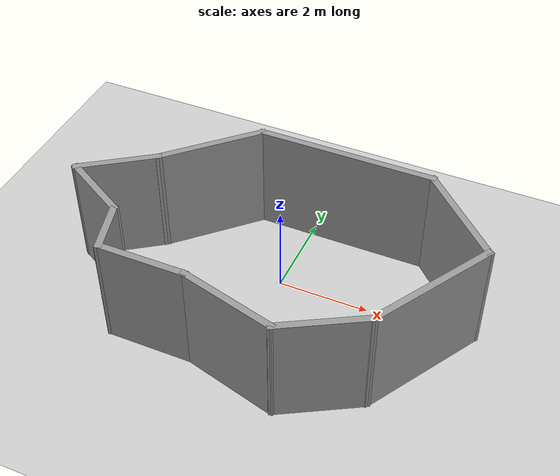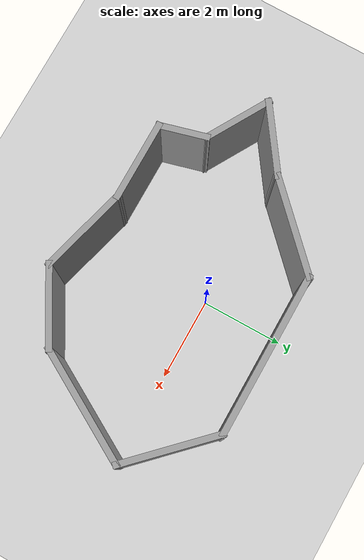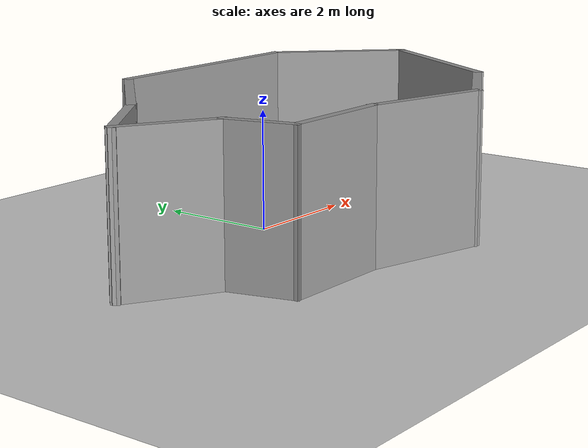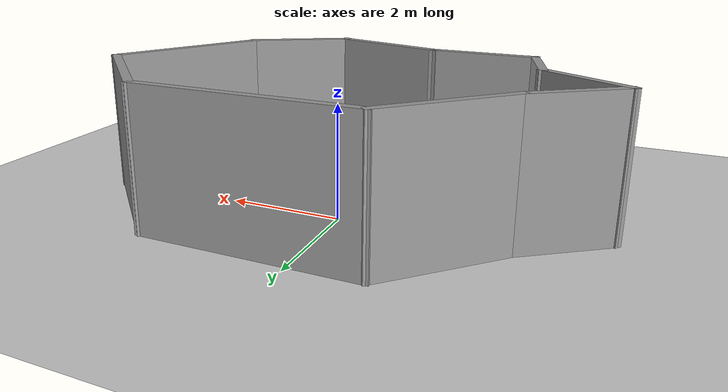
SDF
<sdf version="1.7">
 <world name="default">
  <light name="sun" type="directional">
   <pose>0 0 10 0 -0 0</pose>
   <diffuse>0.8 0.8 0.8 1</diffuse>
   <specular>0.2 0.2 0.2 1</specular>
   <attenuation>
    <range>1000</range>
    <constant>0.9</constant>
    <linear>0.01</linear>
    <quadratic>0.001</quadratic>
   </attenuation>
   <direction>-0.5 0.1 -0.9</direction>
   <spot><inner_angle>0</inner_angle><outer_angle>0</outer_angle><falloff>0</falloff></spot>
  </light>
  <model name="ground_plane">
   <static>1</static>
   <link name="link">
    <collision name="collision">
     <geometry><plane><normal>0 0 1</normal><size>100 100</size></plane></geometry>
     <surface>
      <contact><collide_bitmask>65535</collide_bitmask></contact>
      <friction><ode><mu>100</mu><mu2>50</mu2></ode></friction>
     </surface>
    </collision>
    <visual name="visual">
     <cast_shadows>0</cast_shadows>
     <geometry><plane><normal>0 0 1</normal><size>100 100</size></plane></geometry>
     <material>
      <script><uri>file://media/materials/scripts/gazebo.material</uri><name>Gazebo/Grey</name></script>
     </material>
    </visual>
   </link>
  </model>
  <gravity>0 0 -9.8</gravity>
  <magnetic_field>6e-06 2.3e-05 -4.2e-05</magnetic_field>
  <atmosphere type="adiabatic"/>
  <physics type="ode">
   <max_step_size>0.001</max_step_size>
   <real_time_factor>1</real_time_factor>
   <real_time_update_rate>1000</real_time_update_rate>
  </physics>
  <scene><ambient>0.4 0.4 0.4 1</ambient><background>0.7 0.7 0.7 1</background><shadows>1</shadows></scene>
  <audio><device>default</device></audio>
  <spherical_coordinates>
   <surface_model>EARTH_WGS84</surface_model>
   <latitude_deg>0</latitude_deg>
   <longitude_deg>0</longitude_deg>
   <elevation>0</elevation>
   <heading_deg>0</heading_deg>
  </spherical_coordinates>
  <model name="custom_world">
   <pose>0.000519 0.008218 0 0 -0 0</pose>
   <link name="Wall_0">
    <collision name="Wall_0_Collision">
     <geometry><box><size>2.5 0.15 2.5</size></box></geometry>
     <pose>0 0 1.25 0 -0 0</pose>
    </collision>
    <visual name="Wall_0_Visual">
     <pose>0 0 1.25 0 -0 0</pose>
     <geometry><box><size>2.5 0.15 2.5</size></box></geometry>
     <material>
      <script><uri>file://media/materials/scripts/gazebo.material</uri><name>Gazebo/Grey</name></script>
      <ambient>1 1 1 1</ambient>
     </material>
     <meta><layer>0</layer></meta>
    </visual>
    <pose>-2.05537 0.978663 0 0 -0 0.785398</pose>
   </link>
   <link name="Wall_1">
    <collision name="Wall_1_Collision">
     <geometry><box><size>4 0.15 2.5</size></box></geometry>
     <pose>0 0 1.25 0 -0 0</pose>
    </collision>
    <visual name="Wall_1_Visual">
     <pose>0 0 1.25 0 -0 0</pose>
     <geometry><box><size>4 0.15 2.5</size></box></geometry>
     <material>
      <script><uri>file://media/materials/scripts/gazebo.material</uri><name>Gazebo/Grey</name></script>
      <ambient>1 1 1 1</ambient>
     </material>
     <meta><layer>0</layer></meta>
    </visual>
    <pose>0.700482 1.80951 0 0 -0 0</pose>
   </link>
   <link name="Wall_2">
    <collision name="Wall_2_Collision">
     <geometry><box><size>2.5 0.15 2.5</size></box></geometry>
     <pose>0 0 1.25 0 -0 0</pose>
    </collision>
    <visual name="Wall_2_Visual">
     <pose>0 0 1.25 0 -0 0</pose>
     <geometry><box><size>2.5 0.15 2.5</size></box></geometry>
     <material>
      <script><uri>file://media/materials/scripts/gazebo.material</uri><name>Gazebo/Grey</name></script>
      <ambient>1 1 1 1</ambient>
     </material>
     <meta><layer>0</layer></meta>
    </visual>
    <pose>3.45633 0.978663 0 0 -0 -0.785398</pose>
   </link>
   <link name="Wall_3">
    <collision name="Wall_3_Collision">
     <geometry><box><size>3 0.15 2.5</size></box></geometry>
     <pose>0 0 1.25 0 -0 0</pose>
    </collision>
    <visual name="Wall_3_Visual">
     <pose>0 0 1.25 0 -0 0</pose>
     <geometry><box><size>3 0.15 2.5</size></box></geometry>
     <material>
      <script><uri>file://media/materials/scripts/gazebo.material</uri><name>Gazebo/Grey</name></script>
      <ambient>1 1 1 1</ambient>
     </material>
     <meta><layer>0</layer></meta>
    </visual>
    <pose>3.57468 -1.08627 0 0 -0 -2.0944</pose>
   </link>
   <link name="Wall_4">
    <collision name="Wall_4_Collision">
     <geometry><box><size>2 0.15 2.5</size></box></geometry>
     <pose>0 0 1.25 0 -0 0</pose>
    </collision>
    <visual name="Wall_4_Visual">
     <pose>0 0 1.25 0 -0 0</pose>
     <geometry><box><size>2 0.15 2.5</size></box></geometry>
     <material>
      <script><uri>file://media/materials/scripts/gazebo.material</uri><name>Gazebo/Grey</name></script>
      <ambient>1 1 1 1</ambient>
     </material>
     <meta><layer>0</layer></meta>
    </visual>
    <pose>2.06111 -2.78286 0 0 -0 -2.61799</pose>
   </link>
   <link name="Wall_5">
    <collision name="Wall_5_Collision">
     <geometry><box><size>2.25 0.15 2.5</size></box></geometry>
     <pose>0 0 1.25 0 -0 0</pose>
    </collision>
    <visual name="Wall_5_Visual">
     <pose>0 0 1.25 0 -0 0</pose>
     <geometry><box><size>2.25 0.15 2.5</size></box></geometry>
     <material>
      <script><uri>file://media/materials/scripts/gazebo.material</uri><name>Gazebo/Grey</name></script>
      <ambient>1 1 1 1</ambient>
     </material>
     <meta><layer>0</layer></meta>
    </visual>
    <pose>0.245814 -2.9736 0 0 -0 2.87979</pose>
   </link>
   <link name="Wall_6">
    <collision name="Wall_6_Collision">
     <geometry><box><size>2 0.15 2.5</size></box></geometry>
     <pose>0 0 1.25 0 -0 0</pose>
    </collision>
    <visual name="Wall_6_Visual">
     <pose>0 0 1.25 0 -0 0</pose>
     <geometry><box><size>2 0.15 2.5</size></box></geometry>
     <material>
      <script><uri>file://media/materials/scripts/gazebo.material</uri><name>Gazebo/Grey</name></script>
      <ambient>1 1 1 1</ambient>
     </material>
     <meta><layer>0</layer></meta>
    </visual>
    <pose>-1.69341 -2.70184 0 0 -0 3.14159</pose>
   </link>
   <link name="Wall_7">
    <collision name="Wall_7_Collision">
     <geometry><box><size>1.25 0.15 2.5</size></box></geometry>
     <pose>0 0 1.25 0 -0 0</pose>
    </collision>
    <visual name="Wall_7_Visual">
     <pose>0 0 1.25 0 -0 0</pose>
     <geometry><box><size>1.25 0.15 2.5</size></box></geometry>
     <material>
      <script><uri>file://media/materials/scripts/gazebo.material</uri><name>Gazebo/Grey</name></script>
      <ambient>1 1 1 1</ambient>
     </material>
     <meta><layer>0</layer></meta>
    </visual>
    <pose>-2.76076 -2.17058 0 0 -0 1.8326</pose>
   </link>
   <link name="Wall_8">
    <collision name="Wall_8_Collision">
     <geometry><box><size>1.75 0.15 2.5</size></box></geometry>
     <pose>0 0 1.25 0 -0 0</pose>
    </collision>
    <visual name="Wall_8_Visual">
     <pose>0 0 1.25 0 -0 0</pose>
     <geometry><box><size>1.75 0.15 2.5</size></box></geometry>
     <material>
      <script><uri>file://media/materials/scripts/gazebo.material</uri><name>Gazebo/Grey</name></script>
      <ambient>1 1 1 1</ambient>
     </material>
     <meta><layer>0</layer></meta>
    </visual>
    <pose>-3.59593 -1.23932 0 0 -0 2.61799</pose>
   </link>
   <link name="Wall_9">
    <collision name="Wall_9_Collision">
     <geometry><box><size>1.86509 0.15 2.5</size></box></geometry>
     <pose>0 0 1.25 0 -0 0</pose>
    </collision>
    <visual name="Wall_9_Visual">
     <pose>0 0 1.25 0 -0 0</pose>
     <geometry><box><size>1.86509 0.15 2.5</size></box></geometry>
     <material>
      <script><uri>file://media/materials/scripts/gazebo.material</uri><name>Gazebo/Grey</name></script>
      <ambient>1 1 1 1</ambient>
     </material>
     <meta><layer>0</layer></meta>
    </visual>
    <pose>-3.58748 -0.345755 0 0 -0 0.613287</pose>
   </link>
   <static>1</static>
  </model>
 </world>
</sdf>
